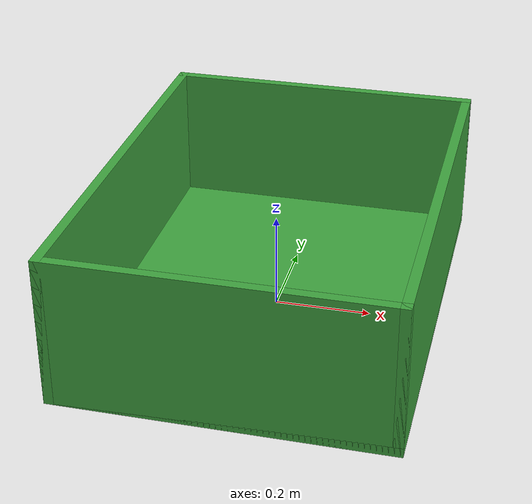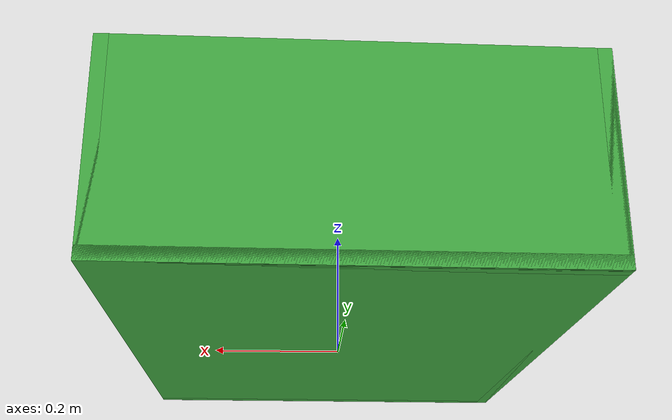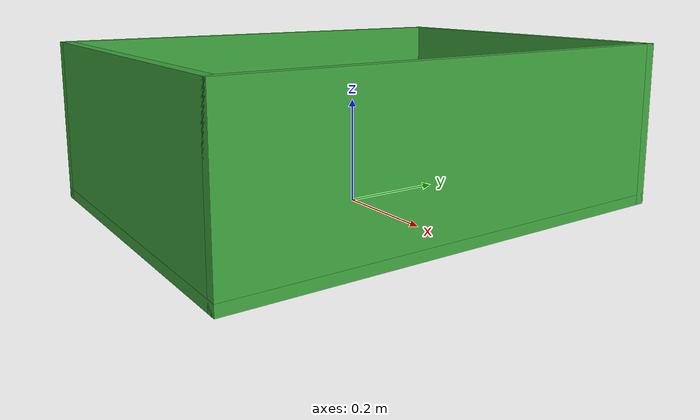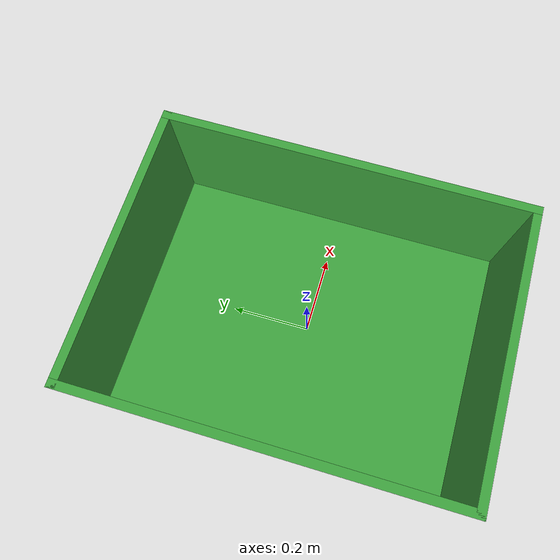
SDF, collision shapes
<?xml version='1.0' encoding='utf-8'?>
<sdf version="1.4">
  <model name="dropoff_box">
      <static>1</static>
      <link name="link">
        <inertial>
          <mass>1.0</mass>
          <inertia>
            <ixx>0.0755262496948</ixx>
            <ixy>0.000000</ixy>
            <ixz>0.000000</ixz>
            <iyy>0.0441608153271</iyy>
            <iyz>0.000000</iyz>
            <izz>0.1033038684</izz>
          </inertia>
        </inertial>
        <!-- hollow box: floor + 4 walls so objects fall inside -->
        <collision name="floor">
          <pose>0 0 0.01 0 0 0</pose>
          <geometry><box><size>0.68 0.90 0.02</size></box></geometry>
        </collision>
        <collision name="wall_px">
          <pose>0.33 0 0.155 0 0 0</pose>
          <geometry><box><size>0.02 0.90 0.31</size></box></geometry>
        </collision>
        <collision name="wall_nx">
          <pose>-0.33 0 0.155 0 0 0</pose>
          <geometry><box><size>0.02 0.90 0.31</size></box></geometry>
        </collision>
        <collision name="wall_py">
          <pose>0 0.44 0.155 0 0 0</pose>
          <geometry><box><size>0.68 0.02 0.31</size></box></geometry>
        </collision>
        <collision name="wall_ny">
          <pose>0 -0.44 0.155 0 0 0</pose>
          <geometry><box><size>0.68 0.02 0.31</size></box></geometry>
        </collision>
        <visual name="visual">
          <geometry>
            <mesh>
              <uri>model://dropoff_box/meshes/box_v1.dae</uri>
              <scale>1 1 1</scale>
            </mesh>
          </geometry>
        <material><ambient>0.20 0.55 0.20 1</ambient><diffuse>0.25 0.65 0.25 1</diffuse><specular>0.05 0.15 0.05 1</specular></material></visual>
        <velocity_decay>
          <linear>0.000000</linear>
          <angular>0.000000</angular>
        </velocity_decay>
        <self_collide>0</self_collide>
        <kinematic>0</kinematic>
        <gravity>1</gravity>
      </link>
  </model>
</sdf>
